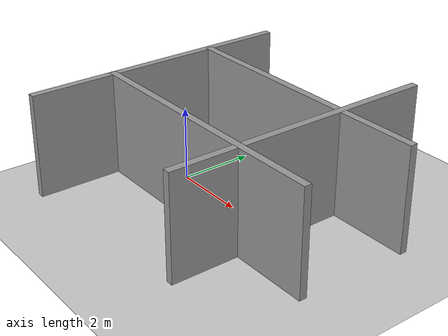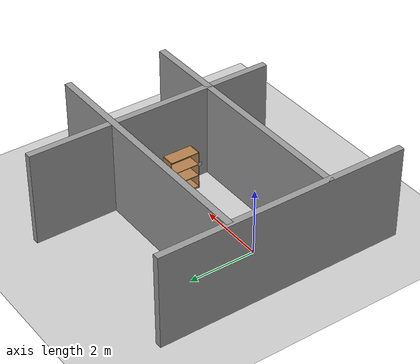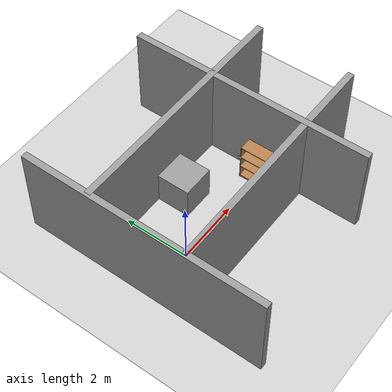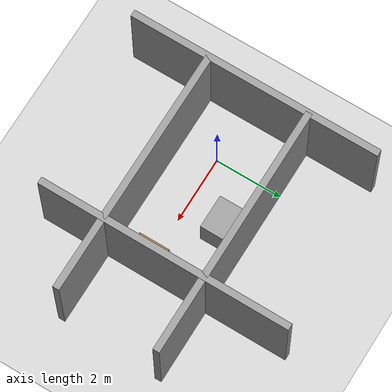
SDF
<sdf version="1.6">
 <world name="default">
  <light name="sun" type="directional">
   <pose>0 0 10 0 -0 0</pose>
   <diffuse>0.8 0.8 0.8 1</diffuse>
   <specular>0.2 0.2 0.2 1</specular>
   <attenuation>
    <range>1000</range>
    <constant>0.9</constant>
    <linear>0.01</linear>
    <quadratic>0.001</quadratic>
   </attenuation>
   <direction>-0.5 0.1 -0.9</direction>
  </light>
  <model name="ground_plane">
   <static>1</static>
   <link name="link">
    <collision name="collision">
     <geometry><plane><normal>0 0 1</normal><size>100 100</size></plane></geometry>
     <surface>
      <contact><collide_bitmask>65535</collide_bitmask></contact>
      <friction><ode><mu>100</mu><mu2>50</mu2></ode></friction>
     </surface>
    </collision>
    <visual name="visual">
     <cast_shadows>0</cast_shadows>
     <geometry><plane><normal>0 0 1</normal><size>100 100</size></plane></geometry>
     <material>
      <script><uri>file://media/materials/scripts/gazebo.material</uri><name>Gazebo/Grey</name></script>
     </material>
    </visual>
   </link>
  </model>
  <gravity>0 0 -9.8</gravity>
  <magnetic_field>6e-06 2.3e-05 -4.2e-05</magnetic_field>
  <atmosphere type="adiabatic"/>
  <physics name="default_physics" default="0" type="ode">
   <max_step_size>0.001</max_step_size>
   <real_time_factor>1</real_time_factor>
   <real_time_update_rate>1000</real_time_update_rate>
  </physics>
  <scene><ambient>0.4 0.4 0.4 1</ambient><background>0.7 0.7 0.7 1</background><shadows>1</shadows></scene>
  <audio><device>default</device></audio>
  <spherical_coordinates>
   <surface_model>EARTH_WGS84</surface_model>
   <latitude_deg>0</latitude_deg>
   <longitude_deg>0</longitude_deg>
   <elevation>0</elevation>
   <heading_deg>0</heading_deg>
  </spherical_coordinates>
  <model name="bookshelf">
   <static>1</static>
   <link name="link">
    <inertial><mass>1</mass></inertial>
    <collision name="back">
     <pose>0 0.005 0.6 0 -0 0</pose>
     <geometry><box><size>0.9 0.01 1.2</size></box></geometry>
    </collision>
    <visual name="visual1">
     <pose>0 0.005 0.6 0 -0 0</pose>
     <geometry><box><size>0.9 0.01 1.2</size></box></geometry>
     <material>
      <script><uri>file://media/materials/scripts/gazebo.material</uri><name>Gazebo/Wood</name></script>
     </material>
    </visual>
    <collision name="left_side">
     <pose>0.45 -0.195 0.6 0 -0 0</pose>
     <geometry><box><size>0.02 0.4 1.2</size></box></geometry>
    </collision>
    <visual name="visual2">
     <pose>0.45 -0.195 0.6 0 -0 0</pose>
     <geometry><box><size>0.02 0.4 1.2</size></box></geometry>
     <material>
      <script><uri>file://media/materials/scripts/gazebo.material</uri><name>Gazebo/Wood</name></script>
     </material>
    </visual>
    <collision name="right_side">
     <pose>-0.45 -0.195 0.6 0 -0 0</pose>
     <geometry><box><size>0.02 0.4 1.2</size></box></geometry>
    </collision>
    <visual name="visual3">
     <pose>-0.45 -0.195 0.6 0 -0 0</pose>
     <geometry><box><size>0.02 0.4 1.2</size></box></geometry>
     <material>
      <script><uri>file://media/materials/scripts/gazebo.material</uri><name>Gazebo/Wood</name></script>
     </material>
    </visual>
    <collision name="bottom">
     <pose>0 -0.195 0.03 0 -0 0</pose>
     <geometry><box><size>0.88 0.4 0.06</size></box></geometry>
    </collision>
    <visual name="visual4">
     <pose>0 -0.195 0.03 0 -0 0</pose>
     <geometry><box><size>0.88 0.4 0.06</size></box></geometry>
     <material>
      <script><uri>file://media/materials/scripts/gazebo.material</uri><name>Gazebo/Wood</name></script>
     </material>
    </visual>
    <collision name="top">
     <pose>0 -0.195 1.19 0 -0 0</pose>
     <geometry><box><size>0.88 0.4 0.02</size></box></geometry>
    </collision>
    <visual name="visual5">
     <pose>0 -0.195 1.19 0 -0 0</pose>
     <geometry><box><size>0.88 0.4 0.02</size></box></geometry>
     <material>
      <script><uri>file://media/materials/scripts/gazebo.material</uri><name>Gazebo/Wood</name></script>
     </material>
    </visual>
    <collision name="low_shelf">
     <pose>0 -0.195 0.43 0 -0 0</pose>
     <geometry><box><size>0.88 0.4 0.02</size></box></geometry>
    </collision>
    <visual name="visual6">
     <pose>0 -0.195 0.43 0 -0 0</pose>
     <geometry><box><size>0.88 0.4 0.02</size></box></geometry>
     <material>
      <script><uri>file://media/materials/scripts/gazebo.material</uri><name>Gazebo/Wood</name></script>
     </material>
    </visual>
    <collision name="high_shelf">
     <pose>0 -0.195 0.8 0 -0 0</pose>
     <geometry><box><size>0.88 0.4 0.02</size></box></geometry>
    </collision>
    <visual name="visual7">
     <pose>0 -0.195 0.8 0 -0 0</pose>
     <geometry><box><size>0.88 0.4 0.02</size></box></geometry>
     <material>
      <script><uri>file://media/materials/scripts/gazebo.material</uri><name>Gazebo/Wood</name></script>
     </material>
    </visual>
   </link>
   <pose>3.52244 0.001709 0 0 0 -1.57</pose>
  </model>
  <model name="grey_wall">
   <static>1</static>
   <link name="link">
    <pose>0 0 1.4 0 -0 0</pose>
    <collision name="collision"><geometry><box><size>7.5 0.2 2.8</size></box></geometry></collision>
    <visual name="visual">
     <cast_shadows>0</cast_shadows>
     <geometry><box><size>7.5 0.2 2.8</size></box></geometry>
     <material>
      <script>
       <uri>model://grey_wall/materials/scripts</uri>
       <uri>model://grey_wall/materials/textures</uri>
       <name>vrc/grey_wall</name>
      </script>
     </material>
    </visual>
   </link>
   <pose>2.17689 -1.15773 0 0 -0 0</pose>
  </model>
  <model name="grey_wall_0">
   <static>1</static>
   <link name="link">
    <pose>0 0 1.4 0 -0 0</pose>
    <collision name="collision"><geometry><box><size>7.5 0.2 2.8</size></box></geometry></collision>
    <visual name="visual">
     <cast_shadows>0</cast_shadows>
     <geometry><box><size>7.5 0.2 2.8</size></box></geometry>
     <material>
      <script>
       <uri>model://grey_wall/materials/scripts</uri>
       <uri>model://grey_wall/materials/textures</uri>
       <name>vrc/grey_wall</name>
      </script>
     </material>
    </visual>
   </link>
   <pose>2.24542 1.86727 0 0 -0 0</pose>
  </model>
  <model name="grey_wall_1">
   <static>1</static>
   <link name="link">
    <pose>0 0 1.4 0 -0 0</pose>
    <collision name="collision"><geometry><box><size>7.5 0.2 2.8</size></box></geometry></collision>
    <visual name="visual">
     <cast_shadows>0</cast_shadows>
     <geometry><box><size>7.5 0.2 2.8</size></box></geometry>
     <material>
      <script>
       <uri>model://grey_wall/materials/scripts</uri>
       <uri>model://grey_wall/materials/textures</uri>
       <name>vrc/grey_wall</name>
      </script>
     </material>
    </visual>
   </link>
   <pose>3.69979 0.668691 0 0 -0 1.57</pose>
  </model>
  <model name="grey_wall_1_clone">
   <static>1</static>
   <link name="link">
    <pose>0 0 1.4 0 -0 0</pose>
    <collision name="collision"><geometry><box><size>7.5 0.2 2.8</size></box></geometry></collision>
    <visual name="visual">
     <cast_shadows>0</cast_shadows>
     <geometry><box><size>7.5 0.2 2.8</size></box></geometry>
     <material>
      <script>
       <uri>model://grey_wall/materials/scripts</uri>
       <uri>model://grey_wall/materials/textures</uri>
       <name>vrc/grey_wall</name>
      </script>
     </material>
    </visual>
   </link>
   <pose>-1.49276 0.228869 0 0 -0 1.57</pose>
  </model>
  <model name="unit_box">
   <pose>1.605 1.26727 0.499996 -7e-06 -0 -3e-06</pose>
   <link name="link">
    <inertial>
     <mass>1</mass>
     <inertia>
      <ixx>0.166667</ixx>
      <ixy>0</ixy>
      <ixz>0</ixz>
      <iyy>0.166667</iyy>
      <iyz>0</iyz>
      <izz>0.166667</izz>
     </inertia>
    </inertial>
    <collision name="collision"><geometry><box><size>1 1 1</size></box></geometry></collision>
    <visual name="visual">
     <geometry><box><size>1 1 1</size></box></geometry>
     <material>
      <script><name>Gazebo/Grey</name><uri>file://media/materials/scripts/gazebo.material</uri></script>
     </material>
    </visual>
   </link>
  </model>
  <model name="marker005_clone">
   <pose>3.10415 0.46344 0.812883 0 1.57 0</pose>
   <link name="link">
    <inertial>
     <mass>1</mass>
     <inertia><ixx>0.083</ixx><ixy>0</ixy><ixz>0</ixz><iyy>0.083</iyy><iyz>0</iyz><izz>0.083</izz></inertia>
    </inertial>
    <collision name="collision"><geometry><box><size>0.11 0.11 0.004</size></box></geometry></collision>
    <visual name="visual">
     <geometry><box><size>0.11 0.11 0.004</size></box></geometry>
     <material>
      <script><uri>model://marker005/materials/marker005.material</uri><name>marker005</name></script>
     </material>
    </visual>
   </link>
   <static>1</static>
  </model>
  <model name="marker006_clone">
   <pose>3.0794 -0.448352 0.839134 0 1.57 0</pose>
   <link name="link">
    <inertial>
     <mass>1</mass>
     <inertia><ixx>0.083</ixx><ixy>0</ixy><ixz>0</ixz><iyy>0.083</iyy><iyz>0</iyz><izz>0.083</izz></inertia>
    </inertial>
    <collision name="collision"><geometry><box><size>0.11 0.11 0.004</size></box></geometry></collision>
    <visual name="visual">
     <geometry><box><size>0.11 0.11 0.004</size></box></geometry>
     <material>
      <script><uri>model://marker006/materials/marker006.material</uri><name>marker006</name></script>
     </material>
    </visual>
   </link>
   <static>1</static>
  </model>
 </world>
</sdf>
